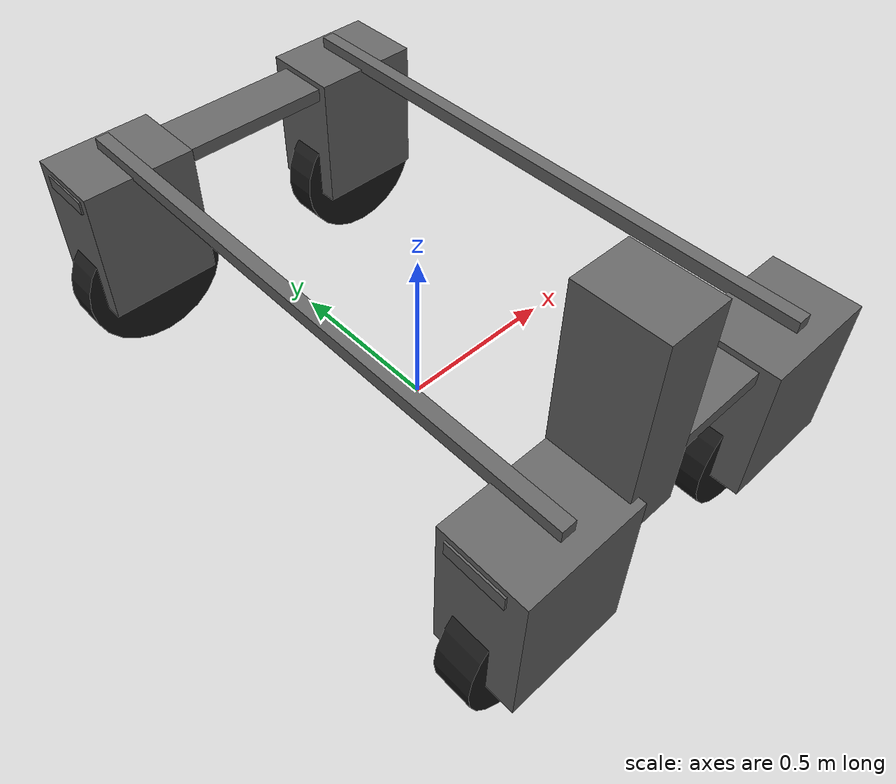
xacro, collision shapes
<?xml version="1.0"?>
<!-- The bare Amiga as a standalone robot. To add the Amiga to your own robot, include amiga.xacro and call the macro.
     gazebo:=true adds the Gazebo drive and wheel joint states (amiga.gazebo.xacro). -->
<robot name="amiga" xmlns:xacro="http://www.ros.org/wiki/xacro">
  <xacro:arg name="prefix" default=""/>
  <xacro:arg name="gazebo" default="false"/>
  <xacro:include filename="$(find amiga_description)/urdf/amiga.xacro"/>
  <xacro:amiga prefix="$(arg prefix)"/>
  <xacro:if value="$(arg gazebo)">
    <xacro:include filename="$(find amiga_description)/urdf/amiga.gazebo.xacro"/>
    <xacro:amiga_gazebo prefix="$(arg prefix)"/>
  </xacro:if>
</robot>

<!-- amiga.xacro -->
<robot xmlns:xacro="http://www.ros.org/wiki/xacro">

  <xacro:property name="amiga_wheel_radius" value="0.216"/>
  <xacro:property name="amiga_wheel_width"  value="0.104"/>
  <xacro:property name="amiga_wheel_mass"   value="7.0"/>    <!-- estimate -->
  <xacro:property name="amiga_base_mass"    value="110.0"/>  <!-- estimate, update after weighing -->
  <xacro:property name="amiga_wheel_x"      value="0.3937"/> <!-- half wheelbase (31 in) -->
  <xacro:property name="amiga_wheel_y"      value="0.762"/>  <!-- half track (60 in) -->

  <!-- One chassis part: the same box as visual and collision -->
  <xacro:macro name="amiga_box" params="xyz size color">
    <visual>
      <origin xyz="${xyz}" rpy="0 0 0"/>
      <geometry><box size="${size}"/></geometry>
      <material name="amiga_${color}"/>
    </visual>
    <collision>
      <origin xyz="${xyz}" rpy="0 0 0"/>
      <geometry><box size="${size}"/></geometry>
    </collision>
  </xacro:macro>

  <xacro:macro name="amiga_wheel" params="prefix name side x y">
    <link name="${prefix}${name}_wheel_link">
      <visual>
        <origin xyz="0 0 0" rpy="0 0 0"/>
        <geometry><mesh filename="package://amiga_description/meshes/wheel_${side}.stl"/></geometry>
        <material name="amiga_black"/>
      </visual>
      <collision>
        <origin xyz="0 0 0" rpy="${pi/2} 0 0"/>
        <geometry><cylinder radius="${amiga_wheel_radius}" length="${amiga_wheel_width}"/></geometry>
      </collision>
      <inertial>
        <origin xyz="0 0 0" rpy="${pi/2} 0 0"/>
        <mass value="${amiga_wheel_mass}"/>
        <inertia ixx="${amiga_wheel_mass*(3*amiga_wheel_radius**2+amiga_wheel_width**2)/12}" ixy="0" ixz="0"
                 iyy="${amiga_wheel_mass*(3*amiga_wheel_radius**2+amiga_wheel_width**2)/12}" iyz="0"
                 izz="${amiga_wheel_mass*amiga_wheel_radius**2/2}"/>
      </inertial>
    </link>
    <joint name="${prefix}${name}_wheel_joint" type="continuous">
      <parent link="${prefix}base_link"/>
      <child link="${prefix}${name}_wheel_link"/>
      <origin xyz="${x} ${y} 0" rpy="0 0 0"/>
      <axis xyz="0 1 0"/>
    </joint>
  </xacro:macro>

  <!-- The Amiga. prefix: prepended to every link and joint name, e.g. "amiga_" -->
  <xacro:macro name="amiga" params="prefix:=''">

    <link name="${prefix}base_footprint"/>
    <joint name="${prefix}base_footprint_joint" type="fixed">
      <parent link="${prefix}base_footprint"/>
      <child link="${prefix}base_link"/>
      <origin xyz="0 0 ${amiga_wheel_radius}" rpy="0 0 0"/>
    </joint>

    <link name="${prefix}base_link">
      <!-- side beams -->
      <xacro:amiga_box xyz="0 ${amiga_wheel_y} 0.364"  size="1.128 0.160 0.040" color="grey"/>
      <xacro:amiga_box xyz="0 ${-amiga_wheel_y} 0.364" size="1.128 0.160 0.040" color="grey"/>
      <!-- cross tubes (front, rear) -->
      <xacro:amiga_box xyz="0.394 0 0.415"  size="0.040 1.676 0.040" color="grey"/>
      <xacro:amiga_box xyz="-0.394 0 0.415" size="0.040 1.676 0.040" color="grey"/>
      <!-- wheel forks (motor housings) -->
      <xacro:amiga_box xyz="0.394 0.774 0.192"   size="0.330 0.236 0.420" color="white"/>
      <xacro:amiga_box xyz="0.394 -0.774 0.192"  size="0.330 0.236 0.420" color="white"/>
      <xacro:amiga_box xyz="-0.394 0.774 0.192"  size="0.330 0.236 0.420" color="white"/>
      <xacro:amiga_box xyz="-0.394 -0.774 0.192" size="0.330 0.236 0.420" color="white"/>
      <!-- dash mast -->
      <xacro:amiga_box xyz="-0.172 -0.763 0.553" size="0.162 0.218 0.576" color="black"/>
      <inertial>
        <origin xyz="0 0 0.3" rpy="0 0 0"/>
        <mass value="${amiga_base_mass}"/>
        <inertia ixx="${amiga_base_mass*(1.68**2+0.6**2)/12}" ixy="0" ixz="0"
                 iyy="${amiga_base_mass*(1.13**2+0.6**2)/12}" iyz="0"
                 izz="${amiga_base_mass*(1.13**2+1.68**2)/12}"/>
      </inertial>
    </link>

    <xacro:amiga_wheel prefix="${prefix}" name="front_left"  side="left"  x="${amiga_wheel_x}"  y="${amiga_wheel_y}"/>
    <xacro:amiga_wheel prefix="${prefix}" name="front_right" side="right" x="${amiga_wheel_x}"  y="${-amiga_wheel_y}"/>
    <xacro:amiga_wheel prefix="${prefix}" name="rear_left"   side="left"  x="${-amiga_wheel_x}" y="${amiga_wheel_y}"/>
    <xacro:amiga_wheel prefix="${prefix}" name="rear_right"  side="right" x="${-amiga_wheel_x}" y="${-amiga_wheel_y}"/>

  </xacro:macro>

  <!-- Materials, referenced by name from the visuals above -->
  <material name="amiga_grey"><color rgba="0.40 0.40 0.40 1"/></material>
  <material name="amiga_white"><color rgba="0.93 0.93 0.91 1"/></material>
  <material name="amiga_black"><color rgba="0.10 0.10 0.10 1"/></material>

</robot>
